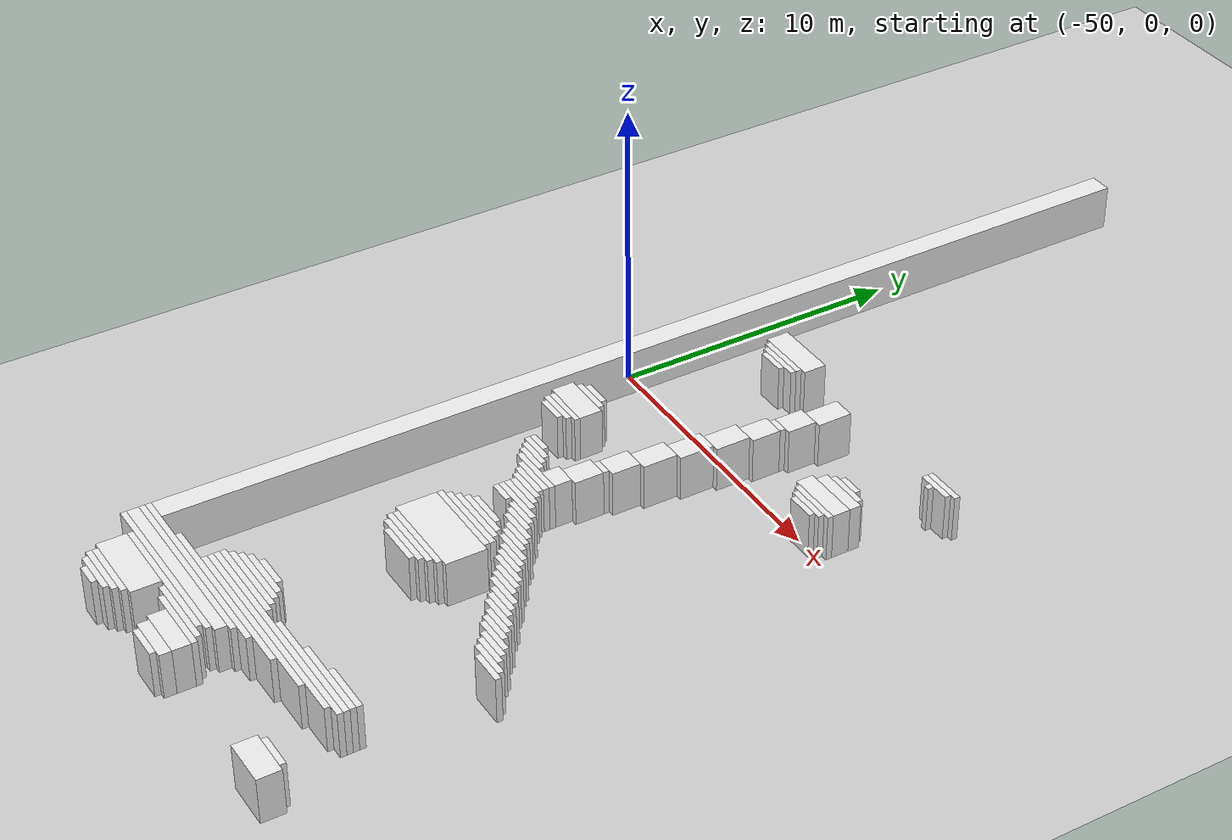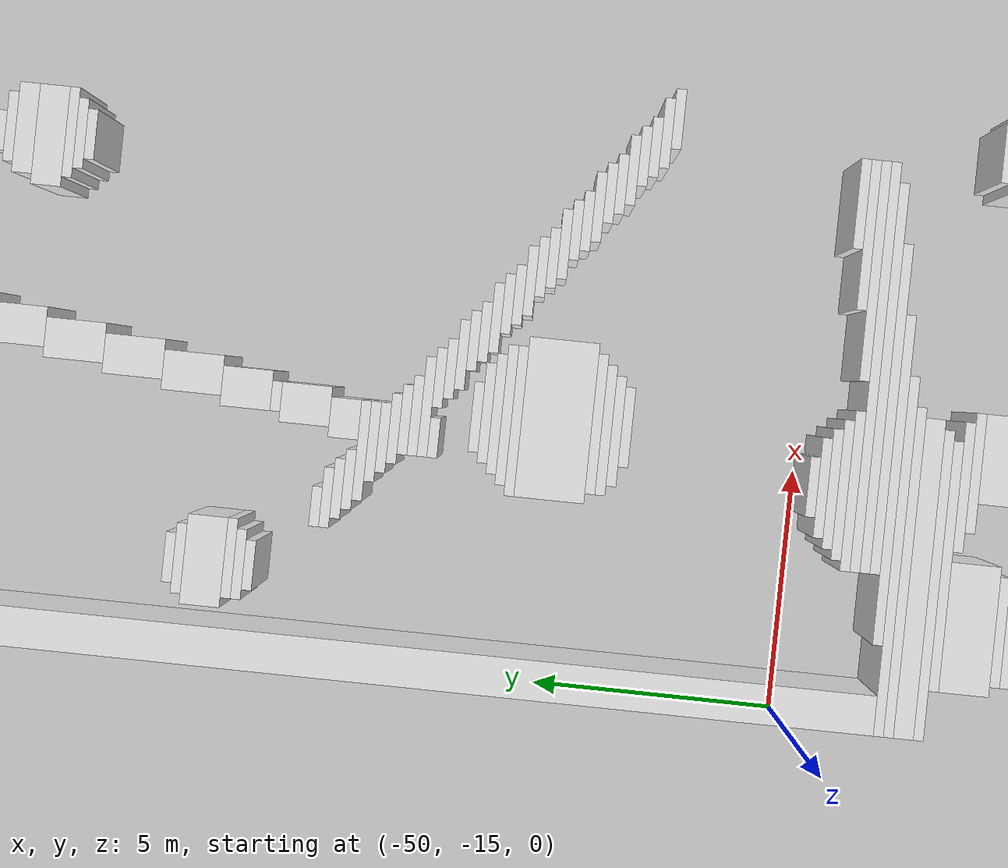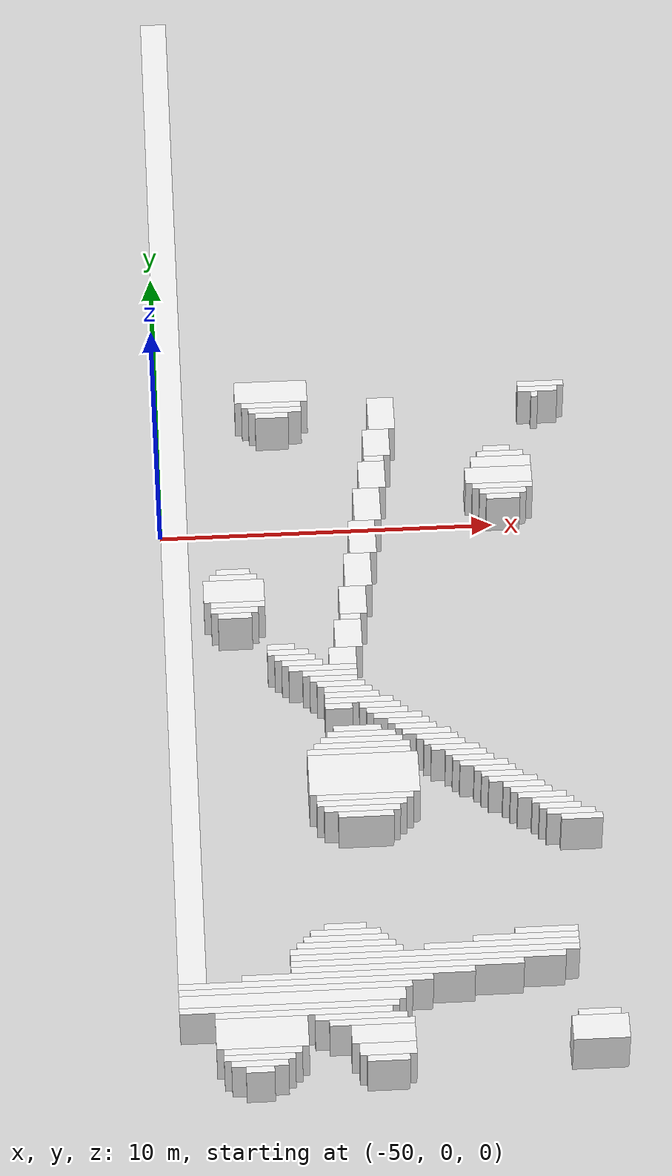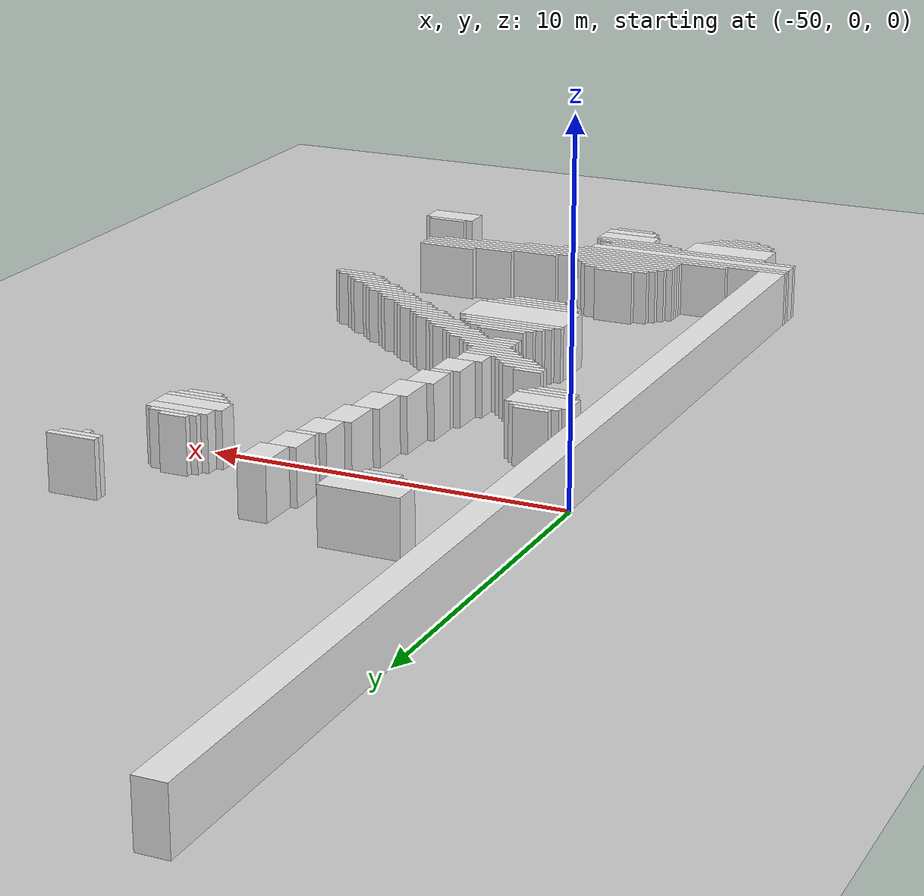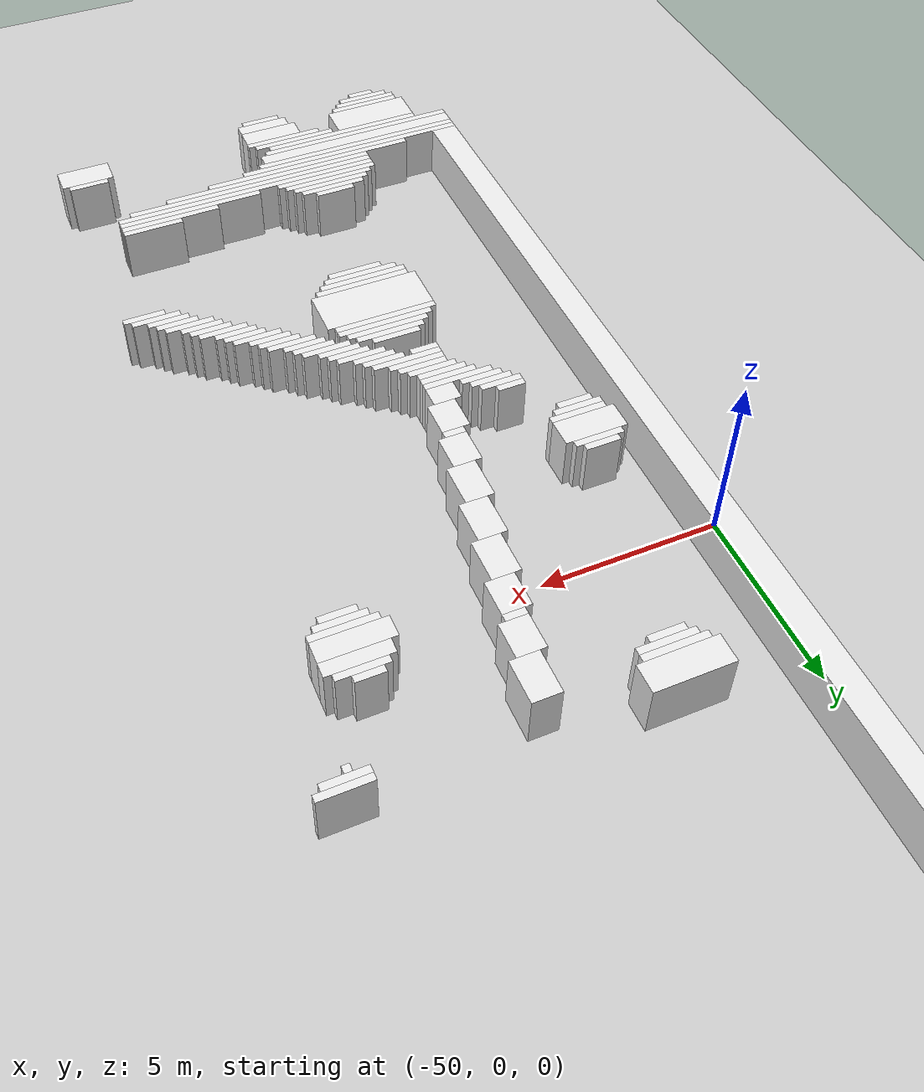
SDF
<sdf version="1.7">
 <world name="default">
  <model name="ground_plane">
   <static>1</static>
   <link name="link">
    <collision name="collision">
     <geometry><plane><normal>0 0 1</normal><size>120 120</size></plane></geometry>
    </collision>
    <visual name="visual">
     <geometry><plane><normal>0 0 1</normal><size>120 120</size></plane></geometry>
     <material>
      <script><uri>file://media/materials/scripts/gazebo.material</uri><name>Gazebo/Grey</name></script>
     </material>
    </visual>
   </link>
  </model>
  <model name="random_complex_02_model">
   <static>1</static>
   <link name="obs_1784">
    <pose>-38.3000 4.1000 0.8000 0 0 0</pose>
    <collision name="obs_1784_col"><geometry><box><size>1.4000 0.2000 1.6000</size></box></geometry></collision>
    <visual name="obs_1784_vis">
     <geometry><box><size>1.4000 0.2000 1.6000</size></box></geometry>
     <material>
      <script><uri>file://media/materials/scripts/gazebo.material</uri><name>Gazebo/White</name></script>
     </material>
    </visual>
   </link>
   <link name="obs_1796">
    <pose>-46.5000 4.2000 0.8000 0 0 0</pose>
    <collision name="obs_1796_col"><geometry><box><size>2.2000 0.8000 1.6000</size></box></geometry></collision>
    <visual name="obs_1796_vis">
     <geometry><box><size>2.2000 0.8000 1.6000</size></box></geometry>
     <material>
      <script><uri>file://media/materials/scripts/gazebo.material</uri><name>Gazebo/White</name></script>
     </material>
    </visual>
   </link>
   <link name="obs_1797">
    <pose>-38.4000 3.9000 0.8000 0 0 0</pose>
    <collision name="obs_1797_col"><geometry><box><size>1.2000 0.2000 1.6000</size></box></geometry></collision>
    <visual name="obs_1797_vis">
     <geometry><box><size>1.2000 0.2000 1.6000</size></box></geometry>
     <material>
      <script><uri>file://media/materials/scripts/gazebo.material</uri><name>Gazebo/White</name></script>
     </material>
    </visual>
   </link>
   <link name="obs_1807">
    <pose>-46.5000 3.7000 0.8000 0 0 0</pose>
    <collision name="obs_1807_col"><geometry><box><size>1.8000 0.2000 1.6000</size></box></geometry></collision>
    <visual name="obs_1807_vis">
     <geometry><box><size>1.8000 0.2000 1.6000</size></box></geometry>
     <material>
      <script><uri>file://media/materials/scripts/gazebo.material</uri><name>Gazebo/White</name></script>
     </material>
    </visual>
   </link>
   <link name="obs_1808">
    <pose>-38.5000 3.7000 0.8000 0 0 0</pose>
    <collision name="obs_1808_col"><geometry><box><size>0.2000 0.2000 1.6000</size></box></geometry></collision>
    <visual name="obs_1808_vis">
     <geometry><box><size>0.2000 0.2000 1.6000</size></box></geometry>
     <material>
      <script><uri>file://media/materials/scripts/gazebo.material</uri><name>Gazebo/White</name></script>
     </material>
    </visual>
   </link>
   <link name="obs_1812">
    <pose>-46.4000 3.5000 0.8000 0 0 0</pose>
    <collision name="obs_1812_col"><geometry><box><size>1.6000 0.2000 1.6000</size></box></geometry></collision>
    <visual name="obs_1812_vis">
     <geometry><box><size>1.6000 0.2000 1.6000</size></box></geometry>
     <material>
      <script><uri>file://media/materials/scripts/gazebo.material</uri><name>Gazebo/White</name></script>
     </material>
    </visual>
   </link>
   <link name="obs_1822">
    <pose>-46.5000 3.3000 0.8000 0 0 0</pose>
    <collision name="obs_1822_col"><geometry><box><size>1.0000 0.2000 1.6000</size></box></geometry></collision>
    <visual name="obs_1822_vis">
     <geometry><box><size>1.0000 0.2000 1.6000</size></box></geometry>
     <material>
      <script><uri>file://media/materials/scripts/gazebo.material</uri><name>Gazebo/White</name></script>
     </material>
    </visual>
   </link>
   <link name="obs_1839">
    <pose>-43.2000 3.2000 0.8000 0 0 0</pose>
    <collision name="obs_1839_col"><geometry><box><size>0.8000 1.2000 1.6000</size></box></geometry></collision>
    <visual name="obs_1839_vis">
     <geometry><box><size>0.8000 1.2000 1.6000</size></box></geometry>
     <material>
      <script><uri>file://media/materials/scripts/gazebo.material</uri><name>Gazebo/White</name></script>
     </material>
    </visual>
   </link>
   <link name="obs_1882">
    <pose>-43.4000 2.1000 0.8000 0 0 0</pose>
    <collision name="obs_1882_col"><geometry><box><size>0.8000 1.0000 1.6000</size></box></geometry></collision>
    <visual name="obs_1882_vis">
     <geometry><box><size>0.8000 1.0000 1.6000</size></box></geometry>
     <material>
      <script><uri>file://media/materials/scripts/gazebo.material</uri><name>Gazebo/White</name></script>
     </material>
    </visual>
   </link>
   <link name="obs_1888">
    <pose>-39.8000 1.7000 0.8000 0 0 0</pose>
    <collision name="obs_1888_col"><geometry><box><size>0.8000 0.2000 1.6000</size></box></geometry></collision>
    <visual name="obs_1888_vis">
     <geometry><box><size>0.8000 0.2000 1.6000</size></box></geometry>
     <material>
      <script><uri>file://media/materials/scripts/gazebo.material</uri><name>Gazebo/White</name></script>
     </material>
    </visual>
   </link>
   <link name="obs_1896">
    <pose>-43.5000 1.5000 0.8000 0 0 0</pose>
    <collision name="obs_1896_col"><geometry><box><size>0.6000 0.2000 1.6000</size></box></geometry></collision>
    <visual name="obs_1896_vis">
     <geometry><box><size>0.6000 0.2000 1.6000</size></box></geometry>
     <material>
      <script><uri>file://media/materials/scripts/gazebo.material</uri><name>Gazebo/White</name></script>
     </material>
    </visual>
   </link>
   <link name="obs_1897">
    <pose>-39.7000 1.5000 0.8000 0 0 0</pose>
    <collision name="obs_1897_col"><geometry><box><size>1.4000 0.2000 1.6000</size></box></geometry></collision>
    <visual name="obs_1897_vis">
     <geometry><box><size>1.4000 0.2000 1.6000</size></box></geometry>
     <material>
      <script><uri>file://media/materials/scripts/gazebo.material</uri><name>Gazebo/White</name></script>
     </material>
    </visual>
   </link>
   <link name="obs_1915">
    <pose>-39.7000 1.2000 0.8000 0 0 0</pose>
    <collision name="obs_1915_col"><geometry><box><size>1.8000 0.4000 1.6000</size></box></geometry></collision>
    <visual name="obs_1915_vis">
     <geometry><box><size>1.8000 0.4000 1.6000</size></box></geometry>
     <material>
      <script><uri>file://media/materials/scripts/gazebo.material</uri><name>Gazebo/White</name></script>
     </material>
    </visual>
   </link>
   <link name="obs_1945">
    <pose>-43.6000 0.9000 0.8000 0 0 0</pose>
    <collision name="obs_1945_col"><geometry><box><size>0.8000 1.0000 1.6000</size></box></geometry></collision>
    <visual name="obs_1945_vis">
     <geometry><box><size>0.8000 1.0000 1.6000</size></box></geometry>
     <material>
      <script><uri>file://media/materials/scripts/gazebo.material</uri><name>Gazebo/White</name></script>
     </material>
    </visual>
   </link>
   <link name="obs_1946">
    <pose>-39.8000 0.7000 0.8000 0 0 0</pose>
    <collision name="obs_1946_col"><geometry><box><size>2.0000 0.6000 1.6000</size></box></geometry></collision>
    <visual name="obs_1946_vis">
     <geometry><box><size>2.0000 0.6000 1.6000</size></box></geometry>
     <material>
      <script><uri>file://media/materials/scripts/gazebo.material</uri><name>Gazebo/White</name></script>
     </material>
    </visual>
   </link>
   <link name="obs_1954">
    <pose>-39.7000 0.3000 0.8000 0 0 0</pose>
    <collision name="obs_1954_col"><geometry><box><size>1.8000 0.2000 1.6000</size></box></geometry></collision>
    <visual name="obs_1954_vis">
     <geometry><box><size>1.8000 0.2000 1.6000</size></box></geometry>
     <material>
      <script><uri>file://media/materials/scripts/gazebo.material</uri><name>Gazebo/White</name></script>
     </material>
    </visual>
   </link>
   <link name="obs_1962">
    <pose>-39.7000 0.1000 0.8000 0 0 0</pose>
    <collision name="obs_1962_col"><geometry><box><size>1.4000 0.2000 1.6000</size></box></geometry></collision>
    <visual name="obs_1962_vis">
     <geometry><box><size>1.4000 0.2000 1.6000</size></box></geometry>
     <material>
      <script><uri>file://media/materials/scripts/gazebo.material</uri><name>Gazebo/White</name></script>
     </material>
    </visual>
   </link>
   <link name="obs_1971">
    <pose>-39.7000 -0.1000 0.8000 0 0 0</pose>
    <collision name="obs_1971_col"><geometry><box><size>1.0000 0.2000 1.6000</size></box></geometry></collision>
    <visual name="obs_1971_vis">
     <geometry><box><size>1.0000 0.2000 1.6000</size></box></geometry>
     <material>
      <script><uri>file://media/materials/scripts/gazebo.material</uri><name>Gazebo/White</name></script>
     </material>
    </visual>
   </link>
   <link name="obs_1995">
    <pose>-43.8000 -0.2000 0.8000 0 0 0</pose>
    <collision name="obs_1995_col"><geometry><box><size>0.8000 1.2000 1.6000</size></box></geometry></collision>
    <visual name="obs_1995_vis">
     <geometry><box><size>0.8000 1.2000 1.6000</size></box></geometry>
     <material>
      <script><uri>file://media/materials/scripts/gazebo.material</uri><name>Gazebo/White</name></script>
     </material>
    </visual>
   </link>
   <link name="obs_2049">
    <pose>-44.0000 -1.4000 0.8000 0 0 0</pose>
    <collision name="obs_2049_col"><geometry><box><size>0.8000 1.2000 1.6000</size></box></geometry></collision>
    <visual name="obs_2049_vis">
     <geometry><box><size>0.8000 1.2000 1.6000</size></box></geometry>
     <material>
      <script><uri>file://media/materials/scripts/gazebo.material</uri><name>Gazebo/White</name></script>
     </material>
    </visual>
   </link>
   <link name="obs_2077">
    <pose>-47.9000 -2.5000 0.8000 0 0 0</pose>
    <collision name="obs_2077_col"><geometry><box><size>1.0000 0.2000 1.6000</size></box></geometry></collision>
    <visual name="obs_2077_vis">
     <geometry><box><size>1.0000 0.2000 1.6000</size></box></geometry>
     <material>
      <script><uri>file://media/materials/scripts/gazebo.material</uri><name>Gazebo/White</name></script>
     </material>
    </visual>
   </link>
   <link name="obs_2085">
    <pose>-47.9000 -2.7000 0.8000 0 0 0</pose>
    <collision name="obs_2085_col"><geometry><box><size>1.4000 0.2000 1.6000</size></box></geometry></collision>
    <visual name="obs_2085_vis">
     <geometry><box><size>1.4000 0.2000 1.6000</size></box></geometry>
     <material>
      <script><uri>file://media/materials/scripts/gazebo.material</uri><name>Gazebo/White</name></script>
     </material>
    </visual>
   </link>
   <link name="obs_2096">
    <pose>-44.2000 -2.6000 0.8000 0 0 0</pose>
    <collision name="obs_2096_col"><geometry><box><size>0.8000 1.2000 1.6000</size></box></geometry></collision>
    <visual name="obs_2096_vis">
     <geometry><box><size>0.8000 1.2000 1.6000</size></box></geometry>
     <material>
      <script><uri>file://media/materials/scripts/gazebo.material</uri><name>Gazebo/White</name></script>
     </material>
    </visual>
   </link>
   <link name="obs_2113">
    <pose>-47.9000 -3.2000 0.8000 0 0 0</pose>
    <collision name="obs_2113_col"><geometry><box><size>1.8000 0.8000 1.6000</size></box></geometry></collision>
    <visual name="obs_2113_vis">
     <geometry><box><size>1.8000 0.8000 1.6000</size></box></geometry>
     <material>
      <script><uri>file://media/materials/scripts/gazebo.material</uri><name>Gazebo/White</name></script>
     </material>
    </visual>
   </link>
   <link name="obs_2124">
    <pose>-47.8000 -3.7000 0.8000 0 0 0</pose>
    <collision name="obs_2124_col"><geometry><box><size>1.6000 0.2000 1.6000</size></box></geometry></collision>
    <visual name="obs_2124_vis">
     <geometry><box><size>1.6000 0.2000 1.6000</size></box></geometry>
     <material>
      <script><uri>file://media/materials/scripts/gazebo.material</uri><name>Gazebo/White</name></script>
     </material>
    </visual>
   </link>
   <link name="obs_2136">
    <pose>-47.9000 -3.9000 0.8000 0 0 0</pose>
    <collision name="obs_2136_col"><geometry><box><size>1.4000 0.2000 1.6000</size></box></geometry></collision>
    <visual name="obs_2136_vis">
     <geometry><box><size>1.4000 0.2000 1.6000</size></box></geometry>
     <material>
      <script><uri>file://media/materials/scripts/gazebo.material</uri><name>Gazebo/White</name></script>
     </material>
    </visual>
   </link>
   <link name="obs_2143">
    <pose>-44.4000 -3.7000 0.8000 0 0 0</pose>
    <collision name="obs_2143_col"><geometry><box><size>0.8000 1.0000 1.6000</size></box></geometry></collision>
    <visual name="obs_2143_vis">
     <geometry><box><size>0.8000 1.0000 1.6000</size></box></geometry>
     <material>
      <script><uri>file://media/materials/scripts/gazebo.material</uri><name>Gazebo/White</name></script>
     </material>
    </visual>
   </link>
   <link name="obs_2146">
    <pose>-47.9000 -4.1000 0.8000 0 0 0</pose>
    <collision name="obs_2146_col"><geometry><box><size>1.0000 0.2000 1.6000</size></box></geometry></collision>
    <visual name="obs_2146_vis">
     <geometry><box><size>1.0000 0.2000 1.6000</size></box></geometry>
     <material>
      <script><uri>file://media/materials/scripts/gazebo.material</uri><name>Gazebo/White</name></script>
     </material>
    </visual>
   </link>
   <link name="obs_2155">
    <pose>-44.5000 -4.3000 0.8000 0 0 0</pose>
    <collision name="obs_2155_col"><geometry><box><size>0.6000 0.2000 1.6000</size></box></geometry></collision>
    <visual name="obs_2155_vis">
     <geometry><box><size>0.6000 0.2000 1.6000</size></box></geometry>
     <material>
      <script><uri>file://media/materials/scripts/gazebo.material</uri><name>Gazebo/White</name></script>
     </material>
    </visual>
   </link>
   <link name="obs_2194">
    <pose>-44.6000 -4.9000 0.8000 0 0 0</pose>
    <collision name="obs_2194_col"><geometry><box><size>0.8000 1.0000 1.6000</size></box></geometry></collision>
    <visual name="obs_2194_vis">
     <geometry><box><size>0.8000 1.0000 1.6000</size></box></geometry>
     <material>
      <script><uri>file://media/materials/scripts/gazebo.material</uri><name>Gazebo/White</name></script>
     </material>
    </visual>
   </link>
   <link name="obs_2197">
    <pose>-46.6000 -5.3000 0.8000 0 0 0</pose>
    <collision name="obs_2197_col"><geometry><box><size>0.8000 0.2000 1.6000</size></box></geometry></collision>
    <visual name="obs_2197_vis">
     <geometry><box><size>0.8000 0.2000 1.6000</size></box></geometry>
     <material>
      <script><uri>file://media/materials/scripts/gazebo.material</uri><name>Gazebo/White</name></script>
     </material>
    </visual>
   </link>
   <link name="obs_2206">
    <pose>-46.4000 -5.5000 0.8000 0 0 0</pose>
    <collision name="obs_2206_col"><geometry><box><size>1.2000 0.2000 1.6000</size></box></geometry></collision>
    <visual name="obs_2206_vis">
     <geometry><box><size>1.2000 0.2000 1.6000</size></box></geometry>
     <material>
      <script><uri>file://media/materials/scripts/gazebo.material</uri><name>Gazebo/White</name></script>
     </material>
    </visual>
   </link>
   <link name="obs_2215">
    <pose>-46.2000 -5.7000 0.8000 0 0 0</pose>
    <collision name="obs_2215_col"><geometry><box><size>1.2000 0.2000 1.6000</size></box></geometry></collision>
    <visual name="obs_2215_vis">
     <geometry><box><size>1.2000 0.2000 1.6000</size></box></geometry>
     <material>
      <script><uri>file://media/materials/scripts/gazebo.material</uri><name>Gazebo/White</name></script>
     </material>
    </visual>
   </link>
   <link name="obs_2223">
    <pose>-44.8000 -5.7000 0.8000 0 0 0</pose>
    <collision name="obs_2223_col"><geometry><box><size>0.8000 0.6000 1.6000</size></box></geometry></collision>
    <visual name="obs_2223_vis">
     <geometry><box><size>0.8000 0.6000 1.6000</size></box></geometry>
     <material>
      <script><uri>file://media/materials/scripts/gazebo.material</uri><name>Gazebo/White</name></script>
     </material>
    </visual>
   </link>
   <link name="obs_2225">
    <pose>-46.0000 -5.9000 0.8000 0 0 0</pose>
    <collision name="obs_2225_col"><geometry><box><size>1.2000 0.2000 1.6000</size></box></geometry></collision>
    <visual name="obs_2225_vis">
     <geometry><box><size>1.2000 0.2000 1.6000</size></box></geometry>
     <material>
      <script><uri>file://media/materials/scripts/gazebo.material</uri><name>Gazebo/White</name></script>
     </material>
    </visual>
   </link>
   <link name="obs_2233">
    <pose>-45.4000 -6.1000 0.8000 0 0 0</pose>
    <collision name="obs_2233_col"><geometry><box><size>2.0000 0.2000 1.6000</size></box></geometry></collision>
    <visual name="obs_2233_vis">
     <geometry><box><size>2.0000 0.2000 1.6000</size></box></geometry>
     <material>
      <script><uri>file://media/materials/scripts/gazebo.material</uri><name>Gazebo/White</name></script>
     </material>
    </visual>
   </link>
   <link name="obs_2238">
    <pose>-45.2000 -6.3000 0.8000 0 0 0</pose>
    <collision name="obs_2238_col"><geometry><box><size>1.6000 0.2000 1.6000</size></box></geometry></collision>
    <visual name="obs_2238_vis">
     <geometry><box><size>1.6000 0.2000 1.6000</size></box></geometry>
     <material>
      <script><uri>file://media/materials/scripts/gazebo.material</uri><name>Gazebo/White</name></script>
     </material>
    </visual>
   </link>
   <link name="obs_2243">
    <pose>-45.1000 -6.5000 0.8000 0 0 0</pose>
    <collision name="obs_2243_col"><geometry><box><size>1.4000 0.2000 1.6000</size></box></geometry></collision>
    <visual name="obs_2243_vis">
     <geometry><box><size>1.4000 0.2000 1.6000</size></box></geometry>
     <material>
      <script><uri>file://media/materials/scripts/gazebo.material</uri><name>Gazebo/White</name></script>
     </material>
    </visual>
   </link>
   <link name="obs_2249">
    <pose>-44.9000 -6.7000 0.8000 0 0 0</pose>
    <collision name="obs_2249_col"><geometry><box><size>1.4000 0.2000 1.6000</size></box></geometry></collision>
    <visual name="obs_2249_vis">
     <geometry><box><size>1.4000 0.2000 1.6000</size></box></geometry>
     <material>
      <script><uri>file://media/materials/scripts/gazebo.material</uri><name>Gazebo/White</name></script>
     </material>
    </visual>
   </link>
   <link name="obs_2254">
    <pose>-44.7000 -6.9000 0.8000 0 0 0</pose>
    <collision name="obs_2254_col"><geometry><box><size>1.4000 0.2000 1.6000</size></box></geometry></collision>
    <visual name="obs_2254_vis">
     <geometry><box><size>1.4000 0.2000 1.6000</size></box></geometry>
     <material>
      <script><uri>file://media/materials/scripts/gazebo.material</uri><name>Gazebo/White</name></script>
     </material>
    </visual>
   </link>
   <link name="obs_2259">
    <pose>-44.6000 -7.1000 0.8000 0 0 0</pose>
    <collision name="obs_2259_col"><geometry><box><size>1.6000 0.2000 1.6000</size></box></geometry></collision>
    <visual name="obs_2259_vis">
     <geometry><box><size>1.6000 0.2000 1.6000</size></box></geometry>
     <material>
      <script><uri>file://media/materials/scripts/gazebo.material</uri><name>Gazebo/White</name></script>
     </material>
    </visual>
   </link>
   <link name="obs_2268">
    <pose>-44.4000 -7.3000 0.8000 0 0 0</pose>
    <collision name="obs_2268_col"><geometry><box><size>2.0000 0.2000 1.6000</size></box></geometry></collision>
    <visual name="obs_2268_vis">
     <geometry><box><size>2.0000 0.2000 1.6000</size></box></geometry>
     <material>
      <script><uri>file://media/materials/scripts/gazebo.material</uri><name>Gazebo/White</name></script>
     </material>
    </visual>
   </link>
   <link name="obs_2273">
    <pose>-45.0000 -7.5000 0.8000 0 0 0</pose>
    <collision name="obs_2273_col"><geometry><box><size>0.8000 0.2000 1.6000</size></box></geometry></collision>
    <visual name="obs_2273_vis">
     <geometry><box><size>0.8000 0.2000 1.6000</size></box></geometry>
     <material>
      <script><uri>file://media/materials/scripts/gazebo.material</uri><name>Gazebo/White</name></script>
     </material>
    </visual>
   </link>
   <link name="obs_2274">
    <pose>-43.8000 -7.5000 0.8000 0 0 0</pose>
    <collision name="obs_2274_col"><geometry><box><size>1.2000 0.2000 1.6000</size></box></geometry></collision>
    <visual name="obs_2274_vis">
     <geometry><box><size>1.2000 0.2000 1.6000</size></box></geometry>
     <material>
      <script><uri>file://media/materials/scripts/gazebo.material</uri><name>Gazebo/White</name></script>
     </material>
    </visual>
   </link>
   <link name="obs_2279">
    <pose>-43.6000 -7.7000 0.8000 0 0 0</pose>
    <collision name="obs_2279_col"><geometry><box><size>1.2000 0.2000 1.6000</size></box></geometry></collision>
    <visual name="obs_2279_vis">
     <geometry><box><size>1.2000 0.2000 1.6000</size></box></geometry>
     <material>
      <script><uri>file://media/materials/scripts/gazebo.material</uri><name>Gazebo/White</name></script>
     </material>
    </visual>
   </link>
   <link name="obs_2287">
    <pose>-43.3000 -7.9000 0.8000 0 0 0</pose>
    <collision name="obs_2287_col"><geometry><box><size>1.4000 0.2000 1.6000</size></box></geometry></collision>
    <visual name="obs_2287_vis">
     <geometry><box><size>1.4000 0.2000 1.6000</size></box></geometry>
     <material>
      <script><uri>file://media/materials/scripts/gazebo.material</uri><name>Gazebo/White</name></script>
     </material>
    </visual>
   </link>
   <link name="obs_2297">
    <pose>-43.0000 -8.1000 0.8000 0 0 0</pose>
    <collision name="obs_2297_col"><geometry><box><size>1.2000 0.2000 1.6000</size></box></geometry></collision>
    <visual name="obs_2297_vis">
     <geometry><box><size>1.2000 0.2000 1.6000</size></box></geometry>
     <material>
      <script><uri>file://media/materials/scripts/gazebo.material</uri><name>Gazebo/White</name></script>
     </material>
    </visual>
   </link>
   <link name="obs_2303">
    <pose>-44.5000 -8.3000 0.8000 0 0 0</pose>
    <collision name="obs_2303_col"><geometry><box><size>1.4000 0.2000 1.6000</size></box></geometry></collision>
    <visual name="obs_2303_vis">
     <geometry><box><size>1.4000 0.2000 1.6000</size></box></geometry>
     <material>
      <script><uri>file://media/materials/scripts/gazebo.material</uri><name>Gazebo/White</name></script>
     </material>
    </visual>
   </link>
   <link name="obs_2304">
    <pose>-42.8000 -8.3000 0.8000 0 0 0</pose>
    <collision name="obs_2304_col"><geometry><box><size>1.2000 0.2000 1.6000</size></box></geometry></collision>
    <visual name="obs_2304_vis">
     <geometry><box><size>1.2000 0.2000 1.6000</size></box></geometry>
     <material>
      <script><uri>file://media/materials/scripts/gazebo.material</uri><name>Gazebo/White</name></script>
     </material>
    </visual>
   </link>
   <link name="obs_2312">
    <pose>-44.4000 -8.5000 0.8000 0 0 0</pose>
    <collision name="obs_2312_col"><geometry><box><size>2.0000 0.2000 1.6000</size></box></geometry></collision>
    <visual name="obs_2312_vis">
     <geometry><box><size>2.0000 0.2000 1.6000</size></box></geometry>
     <material>
      <script><uri>file://media/materials/scripts/gazebo.material</uri><name>Gazebo/White</name></script>
     </material>
    </visual>
   </link>
   <link name="obs_2313">
    <pose>-42.5000 -8.5000 0.8000 0 0 0</pose>
    <collision name="obs_2313_col"><geometry><box><size>1.4000 0.2000 1.6000</size></box></geometry></collision>
    <visual name="obs_2313_vis">
     <geometry><box><size>1.4000 0.2000 1.6000</size></box></geometry>
     <material>
      <script><uri>file://media/materials/scripts/gazebo.material</uri><name>Gazebo/White</name></script>
     </material>
    </visual>
   </link>
   <link name="obs_2317">
    <pose>-44.4000 -8.7000 0.8000 0 0 0</pose>
    <collision name="obs_2317_col"><geometry><box><size>2.4000 0.2000 1.6000</size></box></geometry></collision>
    <visual name="obs_2317_vis">
     <geometry><box><size>2.4000 0.2000 1.6000</size></box></geometry>
     <material>
      <script><uri>file://media/materials/scripts/gazebo.material</uri><name>Gazebo/White</name></script>
     </material>
    </visual>
   </link>
   <link name="obs_2318">
    <pose>-42.2000 -8.7000 0.8000 0 0 0</pose>
    <collision name="obs_2318_col"><geometry><box><size>1.2000 0.2000 1.6000</size></box></geometry></collision>
    <visual name="obs_2318_vis">
     <geometry><box><size>1.2000 0.2000 1.6000</size></box></geometry>
     <material>
      <script><uri>file://media/materials/scripts/gazebo.material</uri><name>Gazebo/White</name></script>
     </material>
    </visual>
   </link>
   <link name="obs_2322">
    <pose>-44.4000 -8.9000 0.8000 0 0 0</pose>
    <collision name="obs_2322_col"><geometry><box><size>2.8000 0.2000 1.6000</size></box></geometry></collision>
    <visual name="obs_2322_vis">
     <geometry><box><size>2.8000 0.2000 1.6000</size></box></geometry>
     <material>
      <script><uri>file://media/materials/scripts/gazebo.material</uri><name>Gazebo/White</name></script>
     </material>
    </visual>
   </link>
   <link name="obs_2323">
    <pose>-42.0000 -8.9000 0.8000 0 0 0</pose>
    <collision name="obs_2323_col"><geometry><box><size>1.2000 0.2000 1.6000</size></box></geometry></collision>
    <visual name="obs_2323_vis">
     <geometry><box><size>1.2000 0.2000 1.6000</size></box></geometry>
     <material>
      <script><uri>file://media/materials/scripts/gazebo.material</uri><name>Gazebo/White</name></script>
     </material>
    </visual>
   </link>
   <link name="obs_2327">
    <pose>-44.5000 -9.1000 0.8000 0 0 0</pose>
    <collision name="obs_2327_col"><geometry><box><size>3.0000 0.2000 1.6000</size></box></geometry></collision>
    <visual name="obs_2327_vis">
     <geometry><box><size>3.0000 0.2000 1.6000</size></box></geometry>
     <material>
      <script><uri>file://media/materials/scripts/gazebo.material</uri><name>Gazebo/White</name></script>
     </material>
    </visual>
   </link>
   <link name="obs_2328">
    <pose>-41.7000 -9.1000 0.8000 0 0 0</pose>
    <collision name="obs_2328_col"><geometry><box><size>1.4000 0.2000 1.6000</size></box></geometry></collision>
    <visual name="obs_2328_vis">
     <geometry><box><size>1.4000 0.2000 1.6000</size></box></geometry>
     <material>
      <script><uri>file://media/materials/scripts/gazebo.material</uri><name>Gazebo/White</name></script>
     </material>
    </visual>
   </link>
   <link name="obs_2335">
    <pose>-41.4000 -9.3000 0.8000 0 0 0</pose>
    <collision name="obs_2335_col"><geometry><box><size>1.2000 0.2000 1.6000</size></box></geometry></collision>
    <visual name="obs_2335_vis">
     <geometry><box><size>1.2000 0.2000 1.6000</size></box></geometry>
     <material>
      <script><uri>file://media/materials/scripts/gazebo.material</uri><name>Gazebo/White</name></script>
     </material>
    </visual>
   </link>
   <link name="obs_2339">
    <pose>-41.2000 -9.5000 0.8000 0 0 0</pose>
    <collision name="obs_2339_col"><geometry><box><size>1.2000 0.2000 1.6000</size></box></geometry></collision>
    <visual name="obs_2339_vis">
     <geometry><box><size>1.2000 0.2000 1.6000</size></box></geometry>
     <material>
      <script><uri>file://media/materials/scripts/gazebo.material</uri><name>Gazebo/White</name></script>
     </material>
    </visual>
   </link>
   <link name="obs_2345">
    <pose>-40.9000 -9.7000 0.8000 0 0 0</pose>
    <collision name="obs_2345_col"><geometry><box><size>1.4000 0.2000 1.6000</size></box></geometry></collision>
    <visual name="obs_2345_vis">
     <geometry><box><size>1.4000 0.2000 1.6000</size></box></geometry>
     <material>
      <script><uri>file://media/materials/scripts/gazebo.material</uri><name>Gazebo/White</name></script>
     </material>
    </visual>
   </link>
   <link name="obs_2352">
    <pose>-40.6000 -9.9000 0.8000 0 0 0</pose>
    <collision name="obs_2352_col"><geometry><box><size>1.2000 0.2000 1.6000</size></box></geometry></collision>
    <visual name="obs_2352_vis">
     <geometry><box><size>1.2000 0.2000 1.6000</size></box></geometry>
     <material>
      <script><uri>file://media/materials/scripts/gazebo.material</uri><name>Gazebo/White</name></script>
     </material>
    </visual>
   </link>
   <link name="obs_2358">
    <pose>-40.4000 -10.1000 0.8000 0 0 0</pose>
    <collision name="obs_2358_col"><geometry><box><size>1.2000 0.2000 1.6000</size></box></geometry></collision>
    <visual name="obs_2358_vis">
     <geometry><box><size>1.2000 0.2000 1.6000</size></box></geometry>
     <material>
      <script><uri>file://media/materials/scripts/gazebo.material</uri><name>Gazebo/White</name></script>
     </material>
    </visual>
   </link>
   <link name="obs_2364">
    <pose>-40.1000 -10.3000 0.8000 0 0 0</pose>
    <collision name="obs_2364_col"><geometry><box><size>1.4000 0.2000 1.6000</size></box></geometry></collision>
    <visual name="obs_2364_vis">
     <geometry><box><size>1.4000 0.2000 1.6000</size></box></geometry>
     <material>
      <script><uri>file://media/materials/scripts/gazebo.material</uri><name>Gazebo/White</name></script>
     </material>
    </visual>
   </link>
   <link name="obs_2370">
    <pose>-44.4000 -9.9000 0.8000 0 0 0</pose>
    <collision name="obs_2370_col"><geometry><box><size>3.2000 1.4000 1.6000</size></box></geometry></collision>
    <visual name="obs_2370_vis">
     <geometry><box><size>3.2000 1.4000 1.6000</size></box></geometry>
     <material>
      <script><uri>file://media/materials/scripts/gazebo.material</uri><name>Gazebo/White</name></script>
     </material>
    </visual>
   </link>
   <link name="obs_2371">
    <pose>-39.8000 -10.5000 0.8000 0 0 0</pose>
    <collision name="obs_2371_col"><geometry><box><size>1.2000 0.2000 1.6000</size></box></geometry></collision>
    <visual name="obs_2371_vis">
     <geometry><box><size>1.2000 0.2000 1.6000</size></box></geometry>
     <material>
      <script><uri>file://media/materials/scripts/gazebo.material</uri><name>Gazebo/White</name></script>
     </material>
    </visual>
   </link>
   <link name="obs_2378">
    <pose>-44.4000 -10.7000 0.8000 0 0 0</pose>
    <collision name="obs_2378_col"><geometry><box><size>2.8000 0.2000 1.6000</size></box></geometry></collision>
    <visual name="obs_2378_vis">
     <geometry><box><size>2.8000 0.2000 1.6000</size></box></geometry>
     <material>
      <script><uri>file://media/materials/scripts/gazebo.material</uri><name>Gazebo/White</name></script>
     </material>
    </visual>
   </link>
   <link name="obs_2379">
    <pose>-39.6000 -10.7000 0.8000 0 0 0</pose>
    <collision name="obs_2379_col"><geometry><box><size>1.2000 0.2000 1.6000</size></box></geometry></collision>
    <visual name="obs_2379_vis">
     <geometry><box><size>1.2000 0.2000 1.6000</size></box></geometry>
     <material>
      <script><uri>file://media/materials/scripts/gazebo.material</uri><name>Gazebo/White</name></script>
     </material>
    </visual>
   </link>
   <link name="obs_2382">
    <pose>-44.5000 -10.9000 0.8000 0 0 0</pose>
    <collision name="obs_2382_col"><geometry><box><size>2.6000 0.2000 1.6000</size></box></geometry></collision>
    <visual name="obs_2382_vis">
     <geometry><box><size>2.6000 0.2000 1.6000</size></box></geometry>
     <material>
      <script><uri>file://media/materials/scripts/gazebo.material</uri><name>Gazebo/White</name></script>
     </material>
    </visual>
   </link>
   <link name="obs_2383">
    <pose>-39.3000 -10.9000 0.8000 0 0 0</pose>
    <collision name="obs_2383_col"><geometry><box><size>1.4000 0.2000 1.6000</size></box></geometry></collision>
    <visual name="obs_2383_vis">
     <geometry><box><size>1.4000 0.2000 1.6000</size></box></geometry>
     <material>
      <script><uri>file://media/materials/scripts/gazebo.material</uri><name>Gazebo/White</name></script>
     </material>
    </visual>
   </link>
   <link name="obs_2389">
    <pose>-44.5000 -11.1000 0.8000 0 0 0</pose>
    <collision name="obs_2389_col"><geometry><box><size>2.2000 0.2000 1.6000</size></box></geometry></collision>
    <visual name="obs_2389_vis">
     <geometry><box><size>2.2000 0.2000 1.6000</size></box></geometry>
     <material>
      <script><uri>file://media/materials/scripts/gazebo.material</uri><name>Gazebo/White</name></script>
     </material>
    </visual>
   </link>
   <link name="obs_2390">
    <pose>-39.0000 -11.1000 0.8000 0 0 0</pose>
    <collision name="obs_2390_col"><geometry><box><size>1.2000 0.2000 1.6000</size></box></geometry></collision>
    <visual name="obs_2390_vis">
     <geometry><box><size>1.2000 0.2000 1.6000</size></box></geometry>
     <material>
      <script><uri>file://media/materials/scripts/gazebo.material</uri><name>Gazebo/White</name></script>
     </material>
    </visual>
   </link>
   <link name="obs_2393">
    <pose>-44.4000 -11.3000 0.8000 0 0 0</pose>
    <collision name="obs_2393_col"><geometry><box><size>1.6000 0.2000 1.6000</size></box></geometry></collision>
    <visual name="obs_2393_vis">
     <geometry><box><size>1.6000 0.2000 1.6000</size></box></geometry>
     <material>
      <script><uri>file://media/materials/scripts/gazebo.material</uri><name>Gazebo/White</name></script>
     </material>
    </visual>
   </link>
   <link name="obs_2394">
    <pose>-38.8000 -11.3000 0.8000 0 0 0</pose>
    <collision name="obs_2394_col"><geometry><box><size>1.2000 0.2000 1.6000</size></box></geometry></collision>
    <visual name="obs_2394_vis">
     <geometry><box><size>1.2000 0.2000 1.6000</size></box></geometry>
     <material>
      <script><uri>file://media/materials/scripts/gazebo.material</uri><name>Gazebo/White</name></script>
     </material>
    </visual>
   </link>
   <link name="obs_2401">
    <pose>-38.5000 -11.5000 0.8000 0 0 0</pose>
    <collision name="obs_2401_col"><geometry><box><size>1.4000 0.2000 1.6000</size></box></geometry></collision>
    <visual name="obs_2401_vis">
     <geometry><box><size>1.4000 0.2000 1.6000</size></box></geometry>
     <material>
      <script><uri>file://media/materials/scripts/gazebo.material</uri><name>Gazebo/White</name></script>
     </material>
    </visual>
   </link>
   <link name="obs_2408">
    <pose>-38.2000 -11.7000 0.8000 0 0 0</pose>
    <collision name="obs_2408_col"><geometry><box><size>1.2000 0.2000 1.6000</size></box></geometry></collision>
    <visual name="obs_2408_vis">
     <geometry><box><size>1.2000 0.2000 1.6000</size></box></geometry>
     <material>
      <script><uri>file://media/materials/scripts/gazebo.material</uri><name>Gazebo/White</name></script>
     </material>
    </visual>
   </link>
   <link name="obs_2551">
    <pose>-45.2000 -15.1000 0.8000 0 0 0</pose>
    <collision name="obs_2551_col"><geometry><box><size>1.2000 0.2000 1.6000</size></box></geometry></collision>
    <visual name="obs_2551_vis">
     <geometry><box><size>1.2000 0.2000 1.6000</size></box></geometry>
     <material>
      <script><uri>file://media/materials/scripts/gazebo.material</uri><name>Gazebo/White</name></script>
     </material>
    </visual>
   </link>
   <link name="obs_2562">
    <pose>-45.2000 -15.3000 0.8000 0 0 0</pose>
    <collision name="obs_2562_col"><geometry><box><size>2.0000 0.2000 1.6000</size></box></geometry></collision>
    <visual name="obs_2562_vis">
     <geometry><box><size>2.0000 0.2000 1.6000</size></box></geometry>
     <material>
      <script><uri>file://media/materials/scripts/gazebo.material</uri><name>Gazebo/White</name></script>
     </material>
    </visual>
   </link>
   <link name="obs_2571">
    <pose>-45.2000 -15.5000 0.8000 0 0 0</pose>
    <collision name="obs_2571_col"><geometry><box><size>2.4000 0.2000 1.6000</size></box></geometry></collision>
    <visual name="obs_2571_vis">
     <geometry><box><size>2.4000 0.2000 1.6000</size></box></geometry>
     <material>
      <script><uri>file://media/materials/scripts/gazebo.material</uri><name>Gazebo/White</name></script>
     </material>
    </visual>
   </link>
   <link name="obs_2572">
    <pose>-39.5000 -15.5000 0.8000 0 0 0</pose>
    <collision name="obs_2572_col"><geometry><box><size>1.8000 0.2000 1.6000</size></box></geometry></collision>
    <visual name="obs_2572_vis">
     <geometry><box><size>1.8000 0.2000 1.6000</size></box></geometry>
     <material>
      <script><uri>file://media/materials/scripts/gazebo.material</uri><name>Gazebo/White</name></script>
     </material>
    </visual>
   </link>
   <link name="obs_2583">
    <pose>-45.2000 -15.7000 0.8000 0 0 0</pose>
    <collision name="obs_2583_col"><geometry><box><size>2.8000 0.2000 1.6000</size></box></geometry></collision>
    <visual name="obs_2583_vis">
     <geometry><box><size>2.8000 0.2000 1.6000</size></box></geometry>
     <material>
      <script><uri>file://media/materials/scripts/gazebo.material</uri><name>Gazebo/White</name></script>
     </material>
    </visual>
   </link>
   <link name="obs_2584">
    <pose>-40.1000 -15.7000 0.8000 0 0 0</pose>
    <collision name="obs_2584_col"><geometry><box><size>3.0000 0.2000 1.6000</size></box></geometry></collision>
    <visual name="obs_2584_vis">
     <geometry><box><size>3.0000 0.2000 1.6000</size></box></geometry>
     <material>
      <script><uri>file://media/materials/scripts/gazebo.material</uri><name>Gazebo/White</name></script>
     </material>
    </visual>
   </link>
   <link name="obs_2596">
    <pose>-45.2000 -15.9000 0.8000 0 0 0</pose>
    <collision name="obs_2596_col"><geometry><box><size>3.2000 0.2000 1.6000</size></box></geometry></collision>
    <visual name="obs_2596_vis">
     <geometry><box><size>3.2000 0.2000 1.6000</size></box></geometry>
     <material>
      <script><uri>file://media/materials/scripts/gazebo.material</uri><name>Gazebo/White</name></script>
     </material>
    </visual>
   </link>
   <link name="obs_2597">
    <pose>-40.8000 -15.9000 0.8000 0 0 0</pose>
    <collision name="obs_2597_col"><geometry><box><size>4.4000 0.2000 1.6000</size></box></geometry></collision>
    <visual name="obs_2597_vis">
     <geometry><box><size>4.4000 0.2000 1.6000</size></box></geometry>
     <material>
      <script><uri>file://media/materials/scripts/gazebo.material</uri><name>Gazebo/White</name></script>
     </material>
    </visual>
   </link>
   <link name="obs_2608">
    <pose>-42.7000 -16.1000 0.8000 0 0 0</pose>
    <collision name="obs_2608_col"><geometry><box><size>8.2000 0.2000 1.6000</size></box></geometry></collision>
    <visual name="obs_2608_vis">
     <geometry><box><size>8.2000 0.2000 1.6000</size></box></geometry>
     <material>
      <script><uri>file://media/materials/scripts/gazebo.material</uri><name>Gazebo/White</name></script>
     </material>
    </visual>
   </link>
   <link name="obs_2614">
    <pose>-42.9000 -16.3000 0.8000 0 0 0</pose>
    <collision name="obs_2614_col"><geometry><box><size>7.8000 0.2000 1.6000</size></box></geometry></collision>
    <visual name="obs_2614_vis">
     <geometry><box><size>7.8000 0.2000 1.6000</size></box></geometry>
     <material>
      <script><uri>file://media/materials/scripts/gazebo.material</uri><name>Gazebo/White</name></script>
     </material>
    </visual>
   </link>
   <link name="obs_2621">
    <pose>-43.5000 -16.5000 0.8000 0 0 0</pose>
    <collision name="obs_2621_col"><geometry><box><size>6.6000 0.2000 1.6000</size></box></geometry></collision>
    <visual name="obs_2621_vis">
     <geometry><box><size>6.6000 0.2000 1.6000</size></box></geometry>
     <material>
      <script><uri>file://media/materials/scripts/gazebo.material</uri><name>Gazebo/White</name></script>
     </material>
    </visual>
   </link>
   <link name="obs_2627">
    <pose>-49.6000 1.2000 0.8000 0 0 0</pose>
    <collision name="obs_2627_col"><geometry><box><size>0.8000 36.0000 1.6000</size></box></geometry></collision>
    <visual name="obs_2627_vis">
     <geometry><box><size>0.8000 36.0000 1.6000</size></box></geometry>
     <material>
      <script><uri>file://media/materials/scripts/gazebo.material</uri><name>Gazebo/White</name></script>
     </material>
    </visual>
   </link>
   <link name="obs_2629">
    <pose>-44.9000 -16.7000 0.8000 0 0 0</pose>
    <collision name="obs_2629_col"><geometry><box><size>6.6000 0.2000 1.6000</size></box></geometry></collision>
    <visual name="obs_2629_vis">
     <geometry><box><size>6.6000 0.2000 1.6000</size></box></geometry>
     <material>
      <script><uri>file://media/materials/scripts/gazebo.material</uri><name>Gazebo/White</name></script>
     </material>
    </visual>
   </link>
   <link name="obs_2637">
    <pose>-46.4000 -16.9000 0.8000 0 0 0</pose>
    <collision name="obs_2637_col"><geometry><box><size>7.2000 0.2000 1.6000</size></box></geometry></collision>
    <visual name="obs_2637_vis">
     <geometry><box><size>7.2000 0.2000 1.6000</size></box></geometry>
     <material>
      <script><uri>file://media/materials/scripts/gazebo.material</uri><name>Gazebo/White</name></script>
     </material>
    </visual>
   </link>
   <link name="obs_2643">
    <pose>-46.7000 -17.1000 0.8000 0 0 0</pose>
    <collision name="obs_2643_col"><geometry><box><size>6.6000 0.2000 1.6000</size></box></geometry></collision>
    <visual name="obs_2643_vis">
     <geometry><box><size>6.6000 0.2000 1.6000</size></box></geometry>
     <material>
      <script><uri>file://media/materials/scripts/gazebo.material</uri><name>Gazebo/White</name></script>
     </material>
    </visual>
   </link>
   <link name="obs_2655">
    <pose>-46.8000 -17.4000 0.8000 0 0 0</pose>
    <collision name="obs_2655_col"><geometry><box><size>6.4000 0.4000 1.6000</size></box></geometry></collision>
    <visual name="obs_2655_vis">
     <geometry><box><size>6.4000 0.4000 1.6000</size></box></geometry>
     <material>
      <script><uri>file://media/materials/scripts/gazebo.material</uri><name>Gazebo/White</name></script>
     </material>
    </visual>
   </link>
   <link name="obs_2663">
    <pose>-46.9000 -17.7000 0.8000 0 0 0</pose>
    <collision name="obs_2663_col"><geometry><box><size>6.2000 0.2000 1.6000</size></box></geometry></collision>
    <visual name="obs_2663_vis">
     <geometry><box><size>6.2000 0.2000 1.6000</size></box></geometry>
     <material>
      <script><uri>file://media/materials/scripts/gazebo.material</uri><name>Gazebo/White</name></script>
     </material>
    </visual>
   </link>
   <link name="obs_2676">
    <pose>-46.5000 -17.9000 0.8000 0 0 0</pose>
    <collision name="obs_2676_col"><geometry><box><size>5.0000 0.2000 1.6000</size></box></geometry></collision>
    <visual name="obs_2676_vis">
     <geometry><box><size>5.0000 0.2000 1.6000</size></box></geometry>
     <material>
      <script><uri>file://media/materials/scripts/gazebo.material</uri><name>Gazebo/White</name></script>
     </material>
    </visual>
   </link>
   <link name="obs_2685">
    <pose>-44.9000 -18.1000 0.8000 0 0 0</pose>
    <collision name="obs_2685_col"><geometry><box><size>2.6000 0.2000 1.6000</size></box></geometry></collision>
    <visual name="obs_2685_vis">
     <geometry><box><size>2.6000 0.2000 1.6000</size></box></geometry>
     <material>
      <script><uri>file://media/materials/scripts/gazebo.material</uri><name>Gazebo/White</name></script>
     </material>
    </visual>
   </link>
   <link name="obs_2694">
    <pose>-44.6000 -18.3000 0.8000 0 0 0</pose>
    <collision name="obs_2694_col"><geometry><box><size>2.4000 0.2000 1.6000</size></box></geometry></collision>
    <visual name="obs_2694_vis">
     <geometry><box><size>2.4000 0.2000 1.6000</size></box></geometry>
     <material>
      <script><uri>file://media/materials/scripts/gazebo.material</uri><name>Gazebo/White</name></script>
     </material>
    </visual>
   </link>
   <link name="obs_2695">
    <pose>-38.2000 -18.3000 0.8000 0 0 0</pose>
    <collision name="obs_2695_col"><geometry><box><size>1.2000 0.2000 1.6000</size></box></geometry></collision>
    <visual name="obs_2695_vis">
     <geometry><box><size>1.2000 0.2000 1.6000</size></box></geometry>
     <material>
      <script><uri>file://media/materials/scripts/gazebo.material</uri><name>Gazebo/White</name></script>
     </material>
    </visual>
   </link>
   <link name="obs_2717">
    <pose>-47.7000 -18.5000 0.8000 0 0 0</pose>
    <collision name="obs_2717_col"><geometry><box><size>2.6000 1.0000 1.6000</size></box></geometry></collision>
    <visual name="obs_2717_vis">
     <geometry><box><size>2.6000 1.0000 1.6000</size></box></geometry>
     <material>
      <script><uri>file://media/materials/scripts/gazebo.material</uri><name>Gazebo/White</name></script>
     </material>
    </visual>
   </link>
   <link name="obs_2718">
    <pose>-44.3000 -18.7000 0.8000 0 0 0</pose>
    <collision name="obs_2718_col"><geometry><box><size>1.8000 0.6000 1.6000</size></box></geometry></collision>
    <visual name="obs_2718_vis">
     <geometry><box><size>1.8000 0.6000 1.6000</size></box></geometry>
     <material>
      <script><uri>file://media/materials/scripts/gazebo.material</uri><name>Gazebo/White</name></script>
     </material>
    </visual>
   </link>
   <link name="obs_2728">
    <pose>-38.2000 -18.8000 0.8000 0 0 0</pose>
    <collision name="obs_2728_col"><geometry><box><size>1.6000 0.8000 1.6000</size></box></geometry></collision>
    <visual name="obs_2728_vis">
     <geometry><box><size>1.6000 0.8000 1.6000</size></box></geometry>
     <material>
      <script><uri>file://media/materials/scripts/gazebo.material</uri><name>Gazebo/White</name></script>
     </material>
    </visual>
   </link>
   <link name="obs_2729">
    <pose>-47.7000 -19.1000 0.8000 0 0 0</pose>
    <collision name="obs_2729_col"><geometry><box><size>2.2000 0.2000 1.6000</size></box></geometry></collision>
    <visual name="obs_2729_vis">
     <geometry><box><size>2.2000 0.2000 1.6000</size></box></geometry>
     <material>
      <script><uri>file://media/materials/scripts/gazebo.material</uri><name>Gazebo/White</name></script>
     </material>
    </visual>
   </link>
   <link name="obs_2739">
    <pose>-44.2000 -19.2000 0.8000 0 0 0</pose>
    <collision name="obs_2739_col"><geometry><box><size>1.6000 0.4000 1.6000</size></box></geometry></collision>
    <visual name="obs_2739_vis">
     <geometry><box><size>1.6000 0.4000 1.6000</size></box></geometry>
     <material>
      <script><uri>file://media/materials/scripts/gazebo.material</uri><name>Gazebo/White</name></script>
     </material>
    </visual>
   </link>
   <link name="obs_2741">
    <pose>-47.8000 -19.3000 0.8000 0 0 0</pose>
    <collision name="obs_2741_col"><geometry><box><size>2.0000 0.2000 1.6000</size></box></geometry></collision>
    <visual name="obs_2741_vis">
     <geometry><box><size>2.0000 0.2000 1.6000</size></box></geometry>
     <material>
      <script><uri>file://media/materials/scripts/gazebo.material</uri><name>Gazebo/White</name></script>
     </material>
    </visual>
   </link>
   <link name="obs_2749">
    <pose>-47.8000 -19.5000 0.8000 0 0 0</pose>
    <collision name="obs_2749_col"><geometry><box><size>1.6000 0.2000 1.6000</size></box></geometry></collision>
    <visual name="obs_2749_vis">
     <geometry><box><size>1.6000 0.2000 1.6000</size></box></geometry>
     <material>
      <script><uri>file://media/materials/scripts/gazebo.material</uri><name>Gazebo/White</name></script>
     </material>
    </visual>
   </link>
   <link name="obs_2750">
    <pose>-44.2000 -19.5000 0.8000 0 0 0</pose>
    <collision name="obs_2750_col"><geometry><box><size>1.2000 0.2000 1.6000</size></box></geometry></collision>
    <visual name="obs_2750_vis">
     <geometry><box><size>1.2000 0.2000 1.6000</size></box></geometry>
     <material>
      <script><uri>file://media/materials/scripts/gazebo.material</uri><name>Gazebo/White</name></script>
     </material>
    </visual>
   </link>
   <link name="obs_2761">
    <pose>-47.8000 -19.7000 0.8000 0 0 0</pose>
    <collision name="obs_2761_col"><geometry><box><size>0.8000 0.2000 1.6000</size></box></geometry></collision>
    <visual name="obs_2761_vis">
     <geometry><box><size>0.8000 0.2000 1.6000</size></box></geometry>
     <material>
      <script><uri>file://media/materials/scripts/gazebo.material</uri><name>Gazebo/White</name></script>
     </material>
    </visual>
   </link>
  </model>
 </world>
</sdf>
